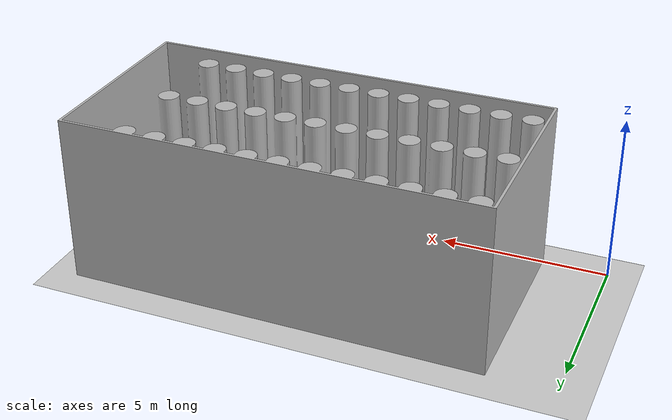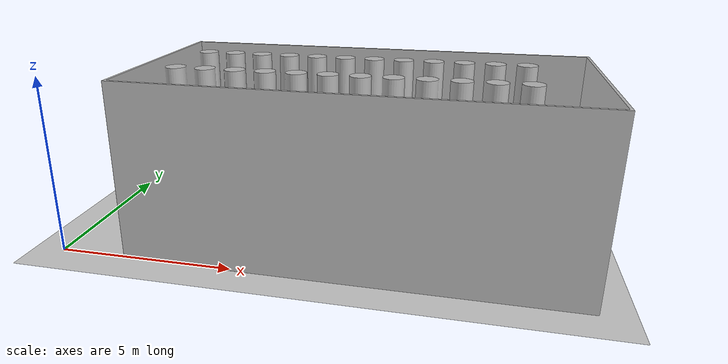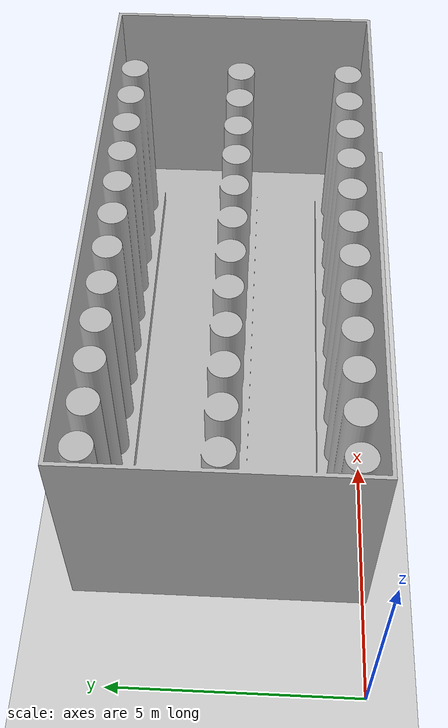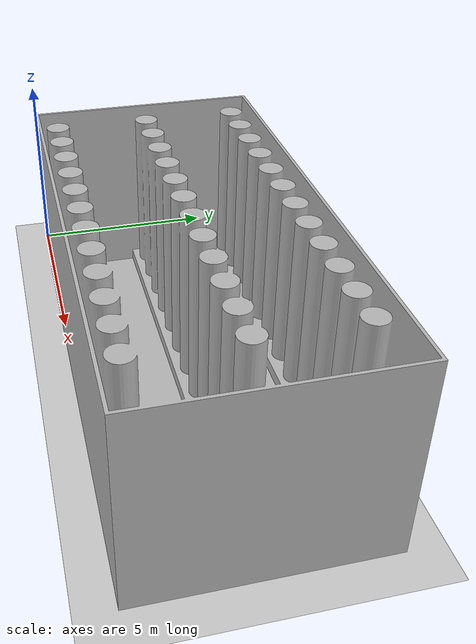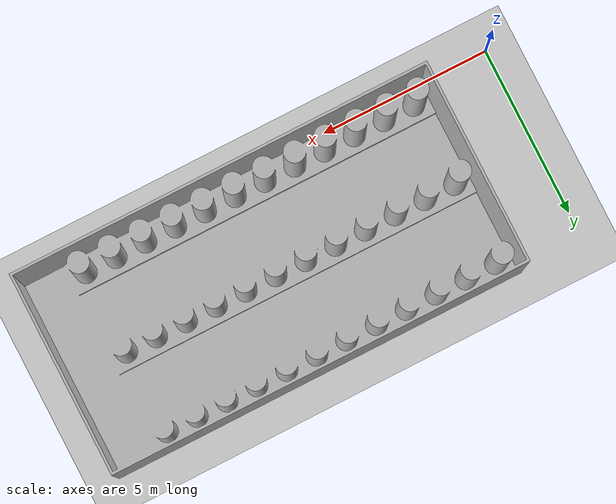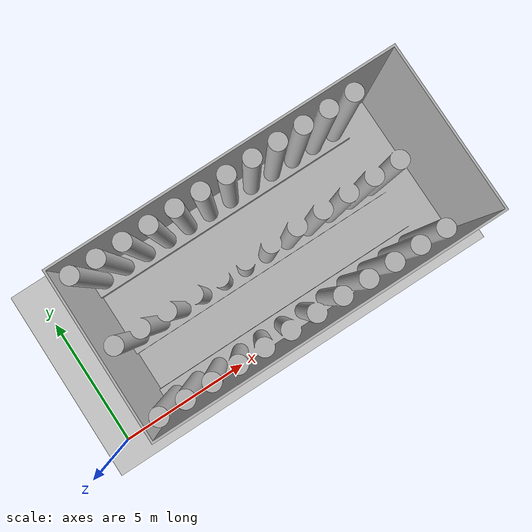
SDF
<?xml version="1.0"?>
<sdf version="1.4">
  <world name="default">
    <include>
      <uri>model://ground_plane</uri>
    </include>
    <include>
      <uri>model://sun</uri>
    </include>
    <model name="my_mesh">
      <pose>2 0 0  0 0 0</pose>
      <static>true</static>
      <link name="body">
      <collision name="greenhouse_collision">
          <geometry>
            <mesh>
              <uri>model://greenhouse/greenhouse_fixed.dae</uri>
              <scale>1 1 1</scale>
            </mesh>
          </geometry>
        </collision>
        <visual name="greenhouse_visual">
          <geometry>
            <mesh><uri>model://greenhouse/greenhouse_fixed.dae</uri></mesh>
          </geometry>
        </visual>
      </link>
    </model>
  </world>
</sdf>
